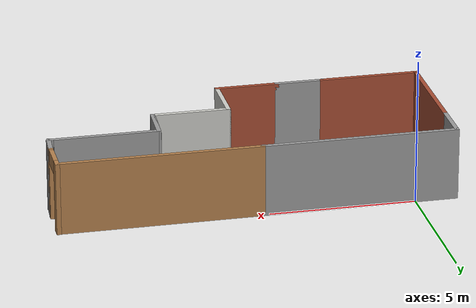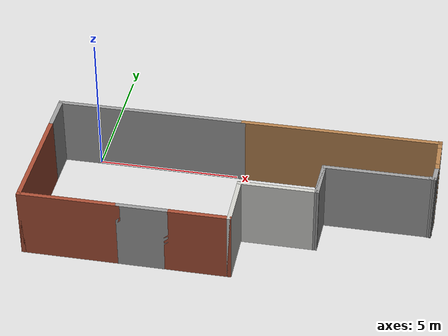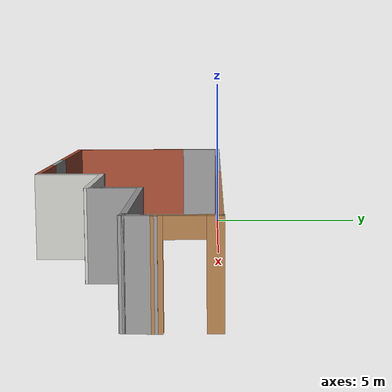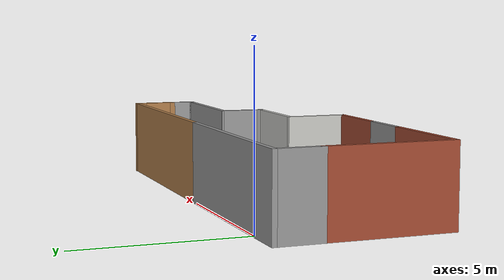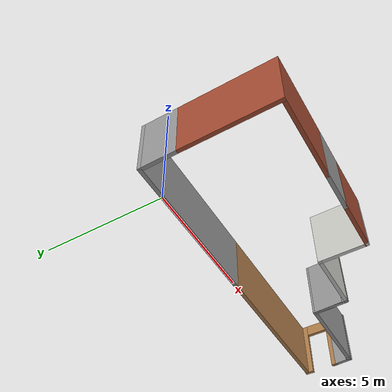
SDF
<?xml version='1.0'?>
<sdf version='1.7'>
  <model name='first_model'>
    <pose>5.3576 -2.60251 0 0 -0 0</pose>
    <link name='Wall_12'>
      <collision name='Wall_12_Collision'>
        <geometry>
          <box>
            <size>4 0.15 2.5</size>
          </box>
        </geometry>
        <pose>0 0 1.25 0 -0 0</pose>
      </collision>
      <visual name='Wall_12_Visual'>
        <pose>0 0 1.25 0 -0 0</pose>
        <geometry>
          <box>
            <size>4 0.15 2.5</size>
          </box>
        </geometry>
        <material>
          <script>
            <uri>file://media/materials/scripts/gazebo.material</uri>
            <name>Gazebo/Bricks</name>
          </script>
          <ambient>1 1 1 1</ambient>
        </material>
        <meta>
          <layer>0</layer>
        </meta>
      </visual>
      <pose>-6.7276 -0.69249 0 0 -0 -1.5708</pose>
    </link>
    <link name='Wall_13'>
      <collision name='Wall_13_Collision'>
        <geometry>
          <box>
            <size>3.5 0.15 2.5</size>
          </box>
        </geometry>
        <pose>0 0 1.25 0 -0 0</pose>
      </collision>
      <visual name='Wall_13_Visual'>
        <pose>0 0 1.25 0 -0 0</pose>
        <geometry>
          <box>
            <size>3.5 0.15 2.5</size>
          </box>
        </geometry>
        <material>
          <script>
            <uri>file://media/materials/scripts/gazebo.material</uri>
            <name>Gazebo/Bricks</name>
          </script>
          <ambient>1 1 1 1</ambient>
        </material>
        <meta>
          <layer>0</layer>
        </meta>
      </visual>
      <pose>-5.0526 -2.61749 0 0 -0 0</pose>
    </link>
    <link name='Wall_17'>
      <collision name='Wall_17_Collision'>
        <geometry>
          <box>
            <size>2.25 0.15 2.5</size>
          </box>
        </geometry>
        <pose>0 0 1.25 0 -0 0</pose>
      </collision>
      <visual name='Wall_17_Visual'>
        <pose>0 0 1.25 0 -0 0</pose>
        <geometry>
          <box>
            <size>2.25 0.15 2.5</size>
          </box>
        </geometry>
        <material>
          <script>
            <uri>file://media/materials/scripts/gazebo.material</uri>
            <name>Gazebo/Bricks</name>
          </script>
          <ambient>1 1 1 1</ambient>
        </material>
        <meta>
          <layer>0</layer>
        </meta>
      </visual>
      <pose>-0.727598 -2.61749 0 0 -0 0</pose>
    </link>
    <link name='Wall_18'>
      <collision name='Wall_18_Collision'>
        <geometry>
          <box>
            <size>2 0.15 2.5</size>
          </box>
        </geometry>
        <pose>0 0 1.25 0 -0 0</pose>
      </collision>
      <visual name='Wall_18_Visual'>
        <pose>0 0 1.25 0 -0 0</pose>
        <geometry>
          <box>
            <size>2 0.15 2.5</size>
          </box>
        </geometry>
        <material>
          <script>
            <uri>file://media/materials/scripts/gazebo.material</uri>
            <name>Gazebo/CeilingTiled</name>
          </script>
          <ambient>1 1 1 1</ambient>
        </material>
        <meta>
          <layer>0</layer>
        </meta>
      </visual>
      <pose>0.322401 -1.69249 0 0 -0 1.5708</pose>
    </link>
    <link name='Wall_19'>
      <collision name='Wall_19_Collision'>
        <geometry>
          <box>
            <size>2.75 0.15 2.5</size>
          </box>
        </geometry>
        <pose>0 0 1.25 0 -0 0</pose>
      </collision>
      <visual name='Wall_19_Visual'>
        <pose>0 0 1.25 0 -0 0</pose>
        <geometry>
          <box>
            <size>2.75 0.15 2.5</size>
          </box>
        </geometry>
        <material>
          <script>
            <uri>file://media/materials/scripts/gazebo.material</uri>
            <name>Gazebo/CeilingTiled</name>
          </script>
          <ambient>1 1 1 1</ambient>
        </material>
        <meta>
          <layer>0</layer>
        </meta>
      </visual>
      <pose>1.6224 -0.76749 0 0 -0 0</pose>
    </link>
    <link name='Wall_25'>
      <collision name='Wall_25_Collision'>
        <geometry>
          <box>
            <size>7 0.15 2.5</size>
          </box>
        </geometry>
        <pose>0 0 1.25 0 -0 0</pose>
      </collision>
      <visual name='Wall_25_Visual'>
        <pose>0 0 1.25 0 -0 0</pose>
        <geometry>
          <box>
            <size>7 0.15 2.5</size>
          </box>
        </geometry>
        <material>
          <script>
            <uri>file://media/materials/scripts/gazebo.material</uri>
            <name>Gazebo/Wood</name>
          </script>
          <ambient>1 1 1 1</ambient>
        </material>
        <meta>
          <layer>0</layer>
        </meta>
      </visual>
      <pose>3.2974 2.6 0 0 -0 0</pose>
    </link>
    <link name='Wall_26'>
      <pose>6.7224 1.925 0 0 -0 -1.5708</pose>
      <visual name='Wall_26_Visual_0'>
        <pose>-0.578846 0 1.25 0 -0 0</pose>
        <geometry>
          <box>
            <size>0.377289 0.15 2.5</size>
          </box>
        </geometry>
        <material>
          <script>
            <uri>file://media/materials/scripts/gazebo.material</uri>
            <name>Gazebo/Wood</name>
          </script>
          <ambient>1 1 1 1</ambient>
        </material>
        <meta>
          <layer>0</layer>
        </meta>
      </visual>
      <collision name='Wall_26_Collision_0'>
        <geometry>
          <box>
            <size>0.377289 0.15 2.5</size>
          </box>
        </geometry>
        <pose>-0.578846 0 1.25 0 -0 0</pose>
      </collision>
      <visual name='Wall_26_Visual_1'>
        <pose>0.638644 0 1.25 0 -0 0</pose>
        <geometry>
          <box>
            <size>0.257691 0.15 2.5</size>
          </box>
        </geometry>
        <material>
          <script>
            <uri>file://media/materials/scripts/gazebo.material</uri>
            <name>Gazebo/Wood</name>
          </script>
          <ambient>1 1 1 1</ambient>
        </material>
        <meta>
          <layer>0</layer>
        </meta>
      </visual>
      <collision name='Wall_26_Collision_1'>
        <geometry>
          <box>
            <size>0.257691 0.15 2.5</size>
          </box>
        </geometry>
        <pose>0.638644 0 1.25 0 -0 0</pose>
      </collision>
      <visual name='Wall_26_Visual_2'>
        <pose>0.059799 0 2.25 0 -0 0</pose>
        <geometry>
          <box>
            <size>0.9 0.15 0.5</size>
          </box>
        </geometry>
        <material>
          <script>
            <uri>file://media/materials/scripts/gazebo.material</uri>
            <name>Gazebo/Wood</name>
          </script>
          <ambient>1 1 1 1</ambient>
        </material>
        <meta>
          <layer>0</layer>
        </meta>
      </visual>
      <collision name='Wall_26_Collision_2'>
        <geometry>
          <box>
            <size>0.9 0.15 0.5</size>
          </box>
        </geometry>
        <pose>0.059799 0 2.25 0 -0 0</pose>
      </collision>
    </link>
    <link name='Wall_30'>
      <collision name='Wall_30_Collision'>
        <geometry>
          <box>
            <size>6.75 0.15 2.5</size>
          </box>
        </geometry>
        <pose>0 0 1.25 0 -0 0</pose>
      </collision>
      <visual name='Wall_30_Visual'>
        <pose>0 0 1.25 0 -0 0</pose>
        <geometry>
          <box>
            <size>6.75 0.15 2.5</size>
          </box>
        </geometry>
        <material>
          <script>
            <uri>file://media/materials/scripts/gazebo.material</uri>
            <name>Gazebo/Grey</name>
          </script>
          <ambient>1 1 1 1</ambient>
        </material>
        <meta>
          <layer>0</layer>
        </meta>
      </visual>
      <pose>-3.4276 2.6 0 0 -0 3.14159</pose>
    </link>
    <link name='Wall_31'>
      <collision name='Wall_31_Collision'>
        <geometry>
          <box>
            <size>1.51749 0.15 2.5</size>
          </box>
        </geometry>
        <pose>0 0 1.25 0 -0 0</pose>
      </collision>
      <visual name='Wall_31_Visual'>
        <pose>0 0 1.25 0 -0 0</pose>
        <geometry>
          <box>
            <size>1.51749 0.15 2.5</size>
          </box>
        </geometry>
        <material>
          <script>
            <uri>file://media/materials/scripts/gazebo.material</uri>
            <name>Gazebo/Grey</name>
          </script>
          <ambient>1 1 1 1</ambient>
        </material>
        <meta>
          <layer>0</layer>
        </meta>
      </visual>
      <pose>-6.7276 1.91626 0 0 -0 -1.5708</pose>
    </link>
    <link name='Wall_33'>
      <collision name='Wall_33_Collision'>
        <geometry>
          <box>
            <size>1.75 0.15 2.5</size>
          </box>
        </geometry>
        <pose>0 0 1.25 0 -0 0</pose>
      </collision>
      <visual name='Wall_33_Visual'>
        <pose>0 0 1.25 0 -0 0</pose>
        <geometry>
          <box>
            <size>1.75 0.15 2.5</size>
          </box>
        </geometry>
        <material>
          <script>
            <uri>file://media/materials/scripts/gazebo.material</uri>
            <name>Gazebo/Grey</name>
          </script>
          <ambient>1 1 1 1</ambient>
        </material>
        <meta>
          <layer>0</layer>
        </meta>
      </visual>
      <pose>-2.5776 -2.61749 0 0 -0 0</pose>
    </link>
    <link name='Wall_35'>
      <collision name='Wall_35_Collision'>
        <geometry>
          <box>
            <size>3.75 0.15 2.5</size>
          </box>
        </geometry>
        <pose>0 0 1.25 0 -0 0</pose>
      </collision>
      <visual name='Wall_35_Visual'>
        <pose>0 0 1.25 0 -0 0</pose>
        <geometry>
          <box>
            <size>3.75 0.15 2.5</size>
          </box>
        </geometry>
        <material>
          <script>
            <uri>file://media/materials/scripts/gazebo.material</uri>
            <name>Gazebo/Grey</name>
          </script>
          <ambient>1 1 1 1</ambient>
        </material>
        <meta>
          <layer>0</layer>
        </meta>
      </visual>
      <pose>4.77483 0.589937 0 0 -0 0</pose>
    </link>
    <link name='Wall_36'>
      <collision name='Wall_36_Collision'>
        <geometry>
          <box>
            <size>0.255942 0.15 2.5</size>
          </box>
        </geometry>
        <pose>0 0 1.25 0 -0 0</pose>
      </collision>
      <visual name='Wall_36_Visual'>
        <pose>0 0 1.25 0 -0 0</pose>
        <geometry>
          <box>
            <size>0.255942 0.15 2.5</size>
          </box>
        </geometry>
        <material>
          <script>
            <uri>file://media/materials/scripts/gazebo.material</uri>
            <name>Gazebo/Grey</name>
          </script>
          <ambient>1 1 1 1</ambient>
        </material>
        <meta>
          <layer>0</layer>
        </meta>
      </visual>
      <pose>6.62483 0.589937 0 0 -0 -0.336498</pose>
    </link>
    <link name='Wall_37'>
      <collision name='Wall_37_Collision'>
        <geometry>
          <box>
            <size>0.255942 0.15 2.5</size>
          </box>
        </geometry>
        <pose>0 0 1.25 0 -0 0</pose>
      </collision>
      <visual name='Wall_37_Visual'>
        <pose>0 0 1.25 0 -0 0</pose>
        <geometry>
          <box>
            <size>0.255942 0.15 2.5</size>
          </box>
        </geometry>
        <material>
          <script>
            <uri>file://media/materials/scripts/gazebo.material</uri>
            <name>Gazebo/Grey</name>
          </script>
          <ambient>1 1 1 1</ambient>
        </material>
        <meta>
          <layer>0</layer>
        </meta>
      </visual>
      <pose>6.62483 0.589937 0 0 -0 2.8051</pose>
    </link>
    <link name='Wall_39'>
      <collision name='Wall_39_Collision'>
        <geometry>
          <box>
            <size>0.811775 0.15 2.5</size>
          </box>
        </geometry>
        <pose>0 0 1.25 0 -0 0</pose>
      </collision>
      <visual name='Wall_39_Visual'>
        <pose>0 0 1.25 0 -0 0</pose>
        <geometry>
          <box>
            <size>0.811775 0.15 2.5</size>
          </box>
        </geometry>
        <material>
          <script>
            <uri>file://media/materials/scripts/gazebo.material</uri>
            <name>Gazebo/Grey</name>
          </script>
          <ambient>1 1 1 1</ambient>
        </material>
        <meta>
          <layer>0</layer>
        </meta>
      </visual>
      <pose>6.69862 0.902478 0 0 -0 -1.64274</pose>
    </link>
    <link name='Wall_41'>
      <collision name='Wall_41_Collision'>
        <geometry>
          <box>
            <size>0.15 0.15 2.5</size>
          </box>
        </geometry>
        <pose>0 0 1.25 0 -0 0</pose>
      </collision>
      <visual name='Wall_41_Visual'>
        <pose>0 0 1.25 0 -0 0</pose>
        <geometry>
          <box>
            <size>0.15 0.15 2.5</size>
          </box>
        </geometry>
        <material>
          <script>
            <uri>file://media/materials/scripts/gazebo.material</uri>
            <name>Gazebo/Grey</name>
          </script>
          <ambient>0 0 0 1</ambient>
        </material>
        <meta>
          <layer>0</layer>
        </meta>
      </visual>
      <pose>2.9224 -0.76749 0 0 -0 0</pose>
    </link>
    <link name='Wall_42'>
      <collision name='Wall_42_Collision'>
        <geometry>
          <box>
            <size>1.27059 0.15 2.5</size>
          </box>
        </geometry>
        <pose>0 0 1.25 0 -0 0</pose>
      </collision>
      <visual name='Wall_42_Visual'>
        <pose>0 0 1.25 0 -0 0</pose>
        <geometry>
          <box>
            <size>1.27059 0.15 2.5</size>
          </box>
        </geometry>
        <material>
          <script>
            <uri>file://media/materials/scripts/gazebo.material</uri>
            <name>Gazebo/Grey</name>
          </script>
          <ambient>1 1 1 1</ambient>
        </material>
        <meta>
          <layer>0</layer>
        </meta>
      </visual>
      <pose>2.9486 0.030255 0 0 -0 1.52396</pose>
    </link>
    <link name='Wall_43'>
      <collision name='Wall_43_Collision'>
        <geometry>
          <box>
            <size>1.50844 0.15 2.5</size>
          </box>
        </geometry>
        <pose>0 0 1.25 0 -0 0</pose>
      </collision>
      <visual name='Wall_43_Visual'>
        <pose>0 0 1.25 0 -0 0</pose>
        <geometry>
          <box>
            <size>1.50844 0.15 2.5</size>
          </box>
        </geometry>
        <material>
          <script>
            <uri>file://media/materials/scripts/gazebo.material</uri>
            <name>Gazebo/Grey</name>
          </script>
          <ambient>1 1 1 1</ambient>
        </material>
        <meta>
          <layer>0</layer>
        </meta>
      </visual>
      <pose>2.94862 -0.088777 0 0 -0 -1.6094</pose>
    </link>
    <static>1</static>
  </model>
</sdf>
